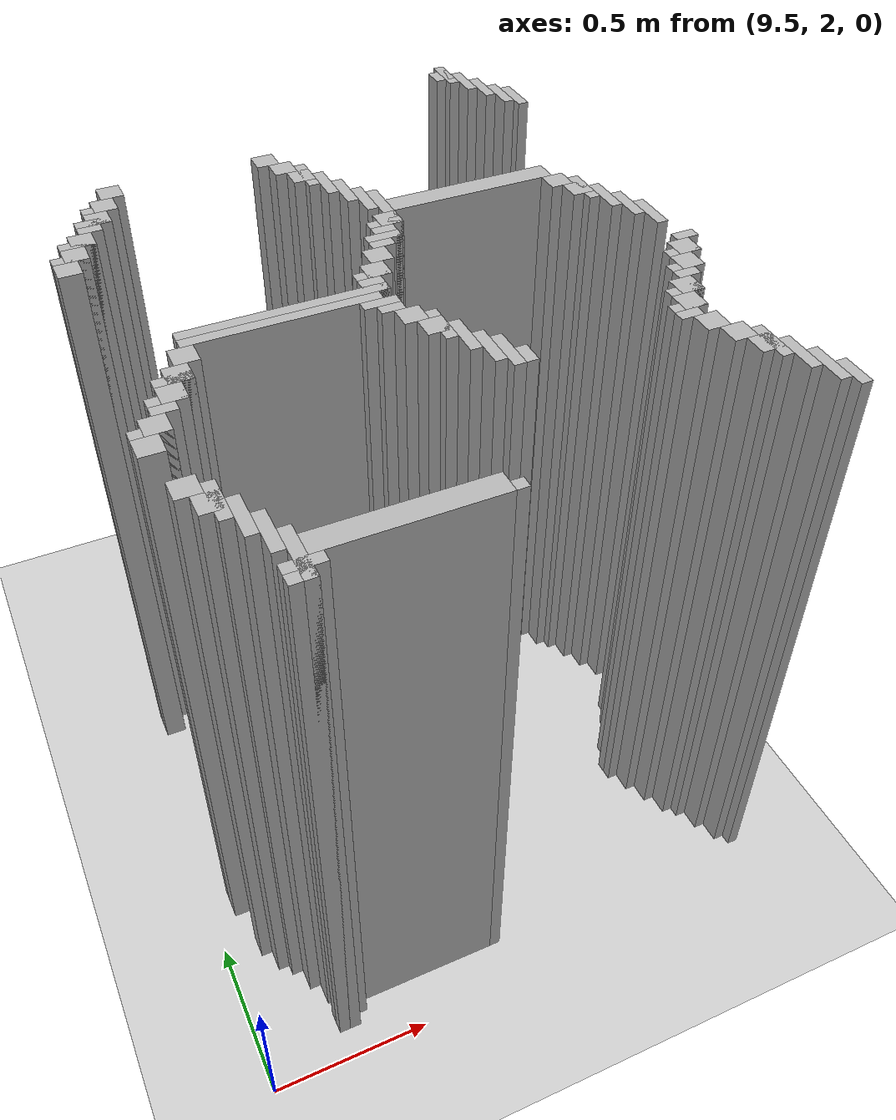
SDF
<sdf version="1.6">
 <world name="slam_world">
  <model name="ground_plane">
   <static>true</static>
   <link name="link">
    <collision name="collision">
     <geometry><plane><normal>0 0 1</normal><size>100 100</size></plane></geometry>
    </collision>
    <visual name="visual">
     <geometry><plane><normal>0 0 1</normal><size>100 100</size></plane></geometry>
     <material>
      <ambient>0.8 0.8 0.8 1</ambient>
      <diffuse>0.8 0.8 0.8 1</diffuse>
      <specular>0.8 0.8 0.8 1</specular>
     </material>
    </visual>
   </link>
  </model>
  <model name="wall_4307">
   <static>true</static>
   <pose>11.084686774941995 4.211136890951276 1.0 0 0 0</pose>
   <link name="link">
    <collision name="collision">
     <geometry><box><size>0.03480278422273782 0.13921113689095127 2.0</size></box></geometry>
    </collision>
    <visual name="visual">
     <geometry><box><size>0.03480278422273782 0.13921113689095127 2.0</size></box></geometry>
     <material><ambient>0.5 0.5 0.5 1</ambient><diffuse>0.7 0.7 0.7 1</diffuse></material>
    </visual>
   </link>
  </model>
  <model name="wall_4322">
   <static>true</static>
   <pose>11.067285382830626 4.211136890951276 1.0 0 0 0</pose>
   <link name="link">
    <collision name="collision">
     <geometry><box><size>0.06960556844547564 0.06960556844547564 2.0</size></box></geometry>
    </collision>
    <visual name="visual">
     <geometry><box><size>0.06960556844547564 0.06960556844547564 2.0</size></box></geometry>
     <material><ambient>0.5 0.5 0.5 1</ambient><diffuse>0.7 0.7 0.7 1</diffuse></material>
    </visual>
   </link>
  </model>
  <model name="wall_4337">
   <static>true</static>
   <pose>11.119489559164732 4.1415313225058 1.0 0 0 0</pose>
   <link name="link">
    <collision name="collision">
     <geometry><box><size>0.03480278422273782 0.13921113689095127 2.0</size></box></geometry>
    </collision>
    <visual name="visual">
     <geometry><box><size>0.03480278422273782 0.13921113689095127 2.0</size></box></geometry>
     <material><ambient>0.5 0.5 0.5 1</ambient><diffuse>0.7 0.7 0.7 1</diffuse></material>
    </visual>
   </link>
  </model>
  <model name="wall_4361">
   <static>true</static>
   <pose>11.154292343387471 4.071925754060325 1.0 0 0 0</pose>
   <link name="link">
    <collision name="collision">
     <geometry><box><size>0.03480278422273782 0.13921113689095127 2.0</size></box></geometry>
    </collision>
    <visual name="visual">
     <geometry><box><size>0.03480278422273782 0.13921113689095127 2.0</size></box></geometry>
     <material><ambient>0.5 0.5 0.5 1</ambient><diffuse>0.7 0.7 0.7 1</diffuse></material>
    </visual>
   </link>
  </model>
  <model name="wall_4376">
   <static>true</static>
   <pose>11.189095127610209 4.002320185614849 1.0 0 0 0</pose>
   <link name="link">
    <collision name="collision">
     <geometry><box><size>0.03480278422273782 0.13921113689095127 2.0</size></box></geometry>
    </collision>
    <visual name="visual">
     <geometry><box><size>0.03480278422273782 0.13921113689095127 2.0</size></box></geometry>
     <material><ambient>0.5 0.5 0.5 1</ambient><diffuse>0.7 0.7 0.7 1</diffuse></material>
    </visual>
   </link>
  </model>
  <model name="wall_4391">
   <static>true</static>
   <pose>11.223897911832946 3.967517401392111 1.0 0 0 0</pose>
   <link name="link">
    <collision name="collision">
     <geometry><box><size>0.03480278422273782 0.13921113689095127 2.0</size></box></geometry>
    </collision>
    <visual name="visual">
     <geometry><box><size>0.03480278422273782 0.13921113689095127 2.0</size></box></geometry>
     <material><ambient>0.5 0.5 0.5 1</ambient><diffuse>0.7 0.7 0.7 1</diffuse></material>
    </visual>
   </link>
  </model>
  <model name="wall_4437">
   <static>true</static>
   <pose>9.814385150812065 3.863109048723898 1.0 0 0 0</pose>
   <link name="link">
    <collision name="collision">
     <geometry><box><size>0.06960556844547564 0.06960556844547564 2.0</size></box></geometry>
    </collision>
    <visual name="visual">
     <geometry><box><size>0.06960556844547564 0.06960556844547564 2.0</size></box></geometry>
     <material><ambient>0.5 0.5 0.5 1</ambient><diffuse>0.7 0.7 0.7 1</diffuse></material>
    </visual>
   </link>
  </model>
  <model name="wall_4438">
   <static>true</static>
   <pose>10.301624129930394 3.863109048723898 1.0 0 0 0</pose>
   <link name="link">
    <collision name="collision">
     <geometry><box><size>0.06960556844547564 0.06960556844547564 2.0</size></box></geometry>
    </collision>
    <visual name="visual">
     <geometry><box><size>0.06960556844547564 0.06960556844547564 2.0</size></box></geometry>
     <material><ambient>0.5 0.5 0.5 1</ambient><diffuse>0.7 0.7 0.7 1</diffuse></material>
    </visual>
   </link>
  </model>
  <model name="wall_4454">
   <static>true</static>
   <pose>9.779582366589327 3.793503480278422 1.0 0 0 0</pose>
   <link name="link">
    <collision name="collision">
     <geometry><box><size>0.06960556844547564 0.06960556844547564 2.0</size></box></geometry>
    </collision>
    <visual name="visual">
     <geometry><box><size>0.06960556844547564 0.06960556844547564 2.0</size></box></geometry>
     <material><ambient>0.5 0.5 0.5 1</ambient><diffuse>0.7 0.7 0.7 1</diffuse></material>
    </visual>
   </link>
  </model>
  <model name="wall_4455">
   <static>true</static>
   <pose>10.336426914153131 3.793503480278422 1.0 0 0 0</pose>
   <link name="link">
    <collision name="collision">
     <geometry><box><size>0.06960556844547564 0.06960556844547564 2.0</size></box></geometry>
    </collision>
    <visual name="visual">
     <geometry><box><size>0.06960556844547564 0.06960556844547564 2.0</size></box></geometry>
     <material><ambient>0.5 0.5 0.5 1</ambient><diffuse>0.7 0.7 0.7 1</diffuse></material>
    </visual>
   </link>
  </model>
  <model name="wall_4471">
   <static>true</static>
   <pose>9.762180974477959 3.776102088167053 1.0 0 0 0</pose>
   <link name="link">
    <collision name="collision">
     <geometry><box><size>0.10440835266821345 0.03480278422273782 2.0</size></box></geometry>
    </collision>
    <visual name="visual">
     <geometry><box><size>0.10440835266821345 0.03480278422273782 2.0</size></box></geometry>
     <material><ambient>0.5 0.5 0.5 1</ambient><diffuse>0.7 0.7 0.7 1</diffuse></material>
    </visual>
   </link>
  </model>
  <model name="wall_4472">
   <static>true</static>
   <pose>10.38863109048724 3.7238979118329465 1.0 0 0 0</pose>
   <link name="link">
    <collision name="collision">
     <geometry><box><size>0.03480278422273782 0.13921113689095127 2.0</size></box></geometry>
    </collision>
    <visual name="visual">
     <geometry><box><size>0.03480278422273782 0.13921113689095127 2.0</size></box></geometry>
     <material><ambient>0.5 0.5 0.5 1</ambient><diffuse>0.7 0.7 0.7 1</diffuse></material>
    </visual>
   </link>
  </model>
  <model name="wall_4488">
   <static>true</static>
   <pose>9.744779582366588 3.7238979118329465 1.0 0 0 0</pose>
   <link name="link">
    <collision name="collision">
     <geometry><box><size>0.06960556844547564 0.06960556844547564 2.0</size></box></geometry>
    </collision>
    <visual name="visual">
     <geometry><box><size>0.06960556844547564 0.06960556844547564 2.0</size></box></geometry>
     <material><ambient>0.5 0.5 0.5 1</ambient><diffuse>0.7 0.7 0.7 1</diffuse></material>
    </visual>
   </link>
  </model>
  <model name="wall_4489">
   <static>true</static>
   <pose>10.37122969837587 3.7238979118329465 1.0 0 0 0</pose>
   <link name="link">
    <collision name="collision">
     <geometry><box><size>0.06960556844547564 0.06960556844547564 2.0</size></box></geometry>
    </collision>
    <visual name="visual">
     <geometry><box><size>0.06960556844547564 0.06960556844547564 2.0</size></box></geometry>
     <material><ambient>0.5 0.5 0.5 1</ambient><diffuse>0.7 0.7 0.7 1</diffuse></material>
    </visual>
   </link>
  </model>
  <model name="wall_4505">
   <static>true</static>
   <pose>9.72737819025522 3.706496519721578 1.0 0 0 0</pose>
   <link name="link">
    <collision name="collision">
     <geometry><box><size>0.10440835266821345 0.03480278422273782 2.0</size></box></geometry>
    </collision>
    <visual name="visual">
     <geometry><box><size>0.10440835266821345 0.03480278422273782 2.0</size></box></geometry>
     <material><ambient>0.5 0.5 0.5 1</ambient><diffuse>0.7 0.7 0.7 1</diffuse></material>
    </visual>
   </link>
  </model>
  <model name="wall_4506">
   <static>true</static>
   <pose>10.423433874709977 3.6542923433874708 1.0 0 0 0</pose>
   <link name="link">
    <collision name="collision">
     <geometry><box><size>0.03480278422273782 0.13921113689095127 2.0</size></box></geometry>
    </collision>
    <visual name="visual">
     <geometry><box><size>0.03480278422273782 0.13921113689095127 2.0</size></box></geometry>
     <material><ambient>0.5 0.5 0.5 1</ambient><diffuse>0.7 0.7 0.7 1</diffuse></material>
    </visual>
   </link>
  </model>
  <model name="wall_4516">
   <static>true</static>
   <pose>9.70997679814385 3.67169373549884 1.0 0 0 0</pose>
   <link name="link">
    <collision name="collision">
     <geometry><box><size>0.06960556844547564 0.03480278422273782 2.0</size></box></geometry>
    </collision>
    <visual name="visual">
     <geometry><box><size>0.06960556844547564 0.03480278422273782 2.0</size></box></geometry>
     <material><ambient>0.5 0.5 0.5 1</ambient><diffuse>0.7 0.7 0.7 1</diffuse></material>
    </visual>
   </link>
  </model>
  <model name="wall_4529">
   <static>true</static>
   <pose>9.675174013921113 3.619489559164733 1.0 0 0 0</pose>
   <link name="link">
    <collision name="collision">
     <geometry><box><size>0.06960556844547564 0.06960556844547564 2.0</size></box></geometry>
    </collision>
    <visual name="visual">
     <geometry><box><size>0.06960556844547564 0.06960556844547564 2.0</size></box></geometry>
     <material><ambient>0.5 0.5 0.5 1</ambient><diffuse>0.7 0.7 0.7 1</diffuse></material>
    </visual>
   </link>
  </model>
  <model name="wall_4530">
   <static>true</static>
   <pose>10.458236658932714 3.584686774941995 1.0 0 0 0</pose>
   <link name="link">
    <collision name="collision">
     <geometry><box><size>0.03480278422273782 0.13921113689095127 2.0</size></box></geometry>
    </collision>
    <visual name="visual">
     <geometry><box><size>0.03480278422273782 0.13921113689095127 2.0</size></box></geometry>
     <material><ambient>0.5 0.5 0.5 1</ambient><diffuse>0.7 0.7 0.7 1</diffuse></material>
    </visual>
   </link>
  </model>
  <model name="wall_4540">
   <static>true</static>
   <pose>9.657772621809745 3.602088167053364 1.0 0 0 0</pose>
   <link name="link">
    <collision name="collision">
     <geometry><box><size>0.10440835266821345 0.03480278422273782 2.0</size></box></geometry>
    </collision>
    <visual name="visual">
     <geometry><box><size>0.10440835266821345 0.03480278422273782 2.0</size></box></geometry>
     <material><ambient>0.5 0.5 0.5 1</ambient><diffuse>0.7 0.7 0.7 1</diffuse></material>
    </visual>
   </link>
  </model>
  <model name="wall_4553">
   <static>true</static>
   <pose>9.640371229698376 3.549883990719257 1.0 0 0 0</pose>
   <link name="link">
    <collision name="collision">
     <geometry><box><size>0.06960556844547564 0.06960556844547564 2.0</size></box></geometry>
    </collision>
    <visual name="visual">
     <geometry><box><size>0.06960556844547564 0.06960556844547564 2.0</size></box></geometry>
     <material><ambient>0.5 0.5 0.5 1</ambient><diffuse>0.7 0.7 0.7 1</diffuse></material>
    </visual>
   </link>
  </model>
  <model name="wall_4554">
   <static>true</static>
   <pose>10.493039443155451 3.51508120649652 1.0 0 0 0</pose>
   <link name="link">
    <collision name="collision">
     <geometry><box><size>0.03480278422273782 0.13921113689095127 2.0</size></box></geometry>
    </collision>
    <visual name="visual">
     <geometry><box><size>0.03480278422273782 0.13921113689095127 2.0</size></box></geometry>
     <material><ambient>0.5 0.5 0.5 1</ambient><diffuse>0.7 0.7 0.7 1</diffuse></material>
    </visual>
   </link>
  </model>
  <model name="wall_4570">
   <static>true</static>
   <pose>9.622969837587007 3.5324825986078885 1.0 0 0 0</pose>
   <link name="link">
    <collision name="collision">
     <geometry><box><size>0.10440835266821345 0.03480278422273782 2.0</size></box></geometry>
    </collision>
    <visual name="visual">
     <geometry><box><size>0.10440835266821345 0.03480278422273782 2.0</size></box></geometry>
     <material><ambient>0.5 0.5 0.5 1</ambient><diffuse>0.7 0.7 0.7 1</diffuse></material>
    </visual>
   </link>
  </model>
  <model name="wall_4571">
   <static>true</static>
   <pose>10.52784222737819 3.445475638051044 1.0 0 0 0</pose>
   <link name="link">
    <collision name="collision">
     <geometry><box><size>0.03480278422273782 0.2088167053364269 2.0</size></box></geometry>
    </collision>
    <visual name="visual">
     <geometry><box><size>0.03480278422273782 0.2088167053364269 2.0</size></box></geometry>
     <material><ambient>0.5 0.5 0.5 1</ambient><diffuse>0.7 0.7 0.7 1</diffuse></material>
    </visual>
   </link>
  </model>
  <model name="wall_4581">
   <static>true</static>
   <pose>9.605568445475638 3.480278422273782 1.0 0 0 0</pose>
   <link name="link">
    <collision name="collision">
     <geometry><box><size>0.06960556844547564 0.06960556844547564 2.0</size></box></geometry>
    </collision>
    <visual name="visual">
     <geometry><box><size>0.06960556844547564 0.06960556844547564 2.0</size></box></geometry>
     <material><ambient>0.5 0.5 0.5 1</ambient><diffuse>0.7 0.7 0.7 1</diffuse></material>
    </visual>
   </link>
  </model>
  <model name="wall_4594">
   <static>true</static>
   <pose>10.806264501160092 3.445475638051044 1.0 0 0 0</pose>
   <link name="link">
    <collision name="collision">
     <geometry><box><size>0.5220417633410672 0.06960556844547564 2.0</size></box></geometry>
    </collision>
    <visual name="visual">
     <geometry><box><size>0.5220417633410672 0.06960556844547564 2.0</size></box></geometry>
     <material><ambient>0.5 0.5 0.5 1</ambient><diffuse>0.7 0.7 0.7 1</diffuse></material>
    </visual>
   </link>
  </model>
  <model name="wall_4613">
   <static>true</static>
   <pose>10.51044083526682 3.3758700696055683 1.0 0 0 0</pose>
   <link name="link">
    <collision name="collision">
     <geometry><box><size>0.06960556844547564 0.06960556844547564 2.0</size></box></geometry>
    </collision>
    <visual name="visual">
     <geometry><box><size>0.06960556844547564 0.06960556844547564 2.0</size></box></geometry>
     <material><ambient>0.5 0.5 0.5 1</ambient><diffuse>0.7 0.7 0.7 1</diffuse></material>
    </visual>
   </link>
  </model>
  <model name="wall_4614">
   <static>true</static>
   <pose>11.067285382830626 3.3758700696055683 1.0 0 0 0</pose>
   <link name="link">
    <collision name="collision">
     <geometry><box><size>0.06960556844547564 0.06960556844547564 2.0</size></box></geometry>
    </collision>
    <visual name="visual">
     <geometry><box><size>0.06960556844547564 0.06960556844547564 2.0</size></box></geometry>
     <material><ambient>0.5 0.5 0.5 1</ambient><diffuse>0.7 0.7 0.7 1</diffuse></material>
    </visual>
   </link>
  </model>
  <model name="wall_4626">
   <static>true</static>
   <pose>10.493039443155451 3.358468677494199 1.0 0 0 0</pose>
   <link name="link">
    <collision name="collision">
     <geometry><box><size>0.10440835266821345 0.03480278422273782 2.0</size></box></geometry>
    </collision>
    <visual name="visual">
     <geometry><box><size>0.10440835266821345 0.03480278422273782 2.0</size></box></geometry>
     <material><ambient>0.5 0.5 0.5 1</ambient><diffuse>0.7 0.7 0.7 1</diffuse></material>
    </visual>
   </link>
  </model>
  <model name="wall_4627">
   <static>true</static>
   <pose>11.119489559164732 3.3062645011600926 1.0 0 0 0</pose>
   <link name="link">
    <collision name="collision">
     <geometry><box><size>0.03480278422273782 0.13921113689095127 2.0</size></box></geometry>
    </collision>
    <visual name="visual">
     <geometry><box><size>0.03480278422273782 0.13921113689095127 2.0</size></box></geometry>
     <material><ambient>0.5 0.5 0.5 1</ambient><diffuse>0.7 0.7 0.7 1</diffuse></material>
    </visual>
   </link>
  </model>
  <model name="wall_4639">
   <static>true</static>
   <pose>10.475638051044083 3.3062645011600926 1.0 0 0 0</pose>
   <link name="link">
    <collision name="collision">
     <geometry><box><size>0.06960556844547564 0.06960556844547564 2.0</size></box></geometry>
    </collision>
    <visual name="visual">
     <geometry><box><size>0.06960556844547564 0.06960556844547564 2.0</size></box></geometry>
     <material><ambient>0.5 0.5 0.5 1</ambient><diffuse>0.7 0.7 0.7 1</diffuse></material>
    </visual>
   </link>
  </model>
  <model name="wall_4640">
   <static>true</static>
   <pose>11.102088167053363 3.3062645011600926 1.0 0 0 0</pose>
   <link name="link">
    <collision name="collision">
     <geometry><box><size>0.06960556844547564 0.06960556844547564 2.0</size></box></geometry>
    </collision>
    <visual name="visual">
     <geometry><box><size>0.06960556844547564 0.06960556844547564 2.0</size></box></geometry>
     <material><ambient>0.5 0.5 0.5 1</ambient><diffuse>0.7 0.7 0.7 1</diffuse></material>
    </visual>
   </link>
  </model>
  <model name="wall_4652">
   <static>true</static>
   <pose>10.458236658932714 3.288863109048724 1.0 0 0 0</pose>
   <link name="link">
    <collision name="collision">
     <geometry><box><size>0.10440835266821345 0.03480278422273782 2.0</size></box></geometry>
    </collision>
    <visual name="visual">
     <geometry><box><size>0.10440835266821345 0.03480278422273782 2.0</size></box></geometry>
     <material><ambient>0.5 0.5 0.5 1</ambient><diffuse>0.7 0.7 0.7 1</diffuse></material>
    </visual>
   </link>
  </model>
  <model name="wall_4653">
   <static>true</static>
   <pose>11.154292343387471 3.236658932714617 1.0 0 0 0</pose>
   <link name="link">
    <collision name="collision">
     <geometry><box><size>0.03480278422273782 0.13921113689095127 2.0</size></box></geometry>
    </collision>
    <visual name="visual">
     <geometry><box><size>0.03480278422273782 0.13921113689095127 2.0</size></box></geometry>
     <material><ambient>0.5 0.5 0.5 1</ambient><diffuse>0.7 0.7 0.7 1</diffuse></material>
    </visual>
   </link>
  </model>
  <model name="wall_4661">
   <static>true</static>
   <pose>10.440835266821345 3.254060324825986 1.0 0 0 0</pose>
   <link name="link">
    <collision name="collision">
     <geometry><box><size>0.06960556844547564 0.03480278422273782 2.0</size></box></geometry>
    </collision>
    <visual name="visual">
     <geometry><box><size>0.06960556844547564 0.03480278422273782 2.0</size></box></geometry>
     <material><ambient>0.5 0.5 0.5 1</ambient><diffuse>0.7 0.7 0.7 1</diffuse></material>
    </visual>
   </link>
  </model>
  <model name="wall_4671">
   <static>true</static>
   <pose>10.406032482598608 3.201856148491879 1.0 0 0 0</pose>
   <link name="link">
    <collision name="collision">
     <geometry><box><size>0.06960556844547564 0.06960556844547564 2.0</size></box></geometry>
    </collision>
    <visual name="visual">
     <geometry><box><size>0.06960556844547564 0.06960556844547564 2.0</size></box></geometry>
     <material><ambient>0.5 0.5 0.5 1</ambient><diffuse>0.7 0.7 0.7 1</diffuse></material>
    </visual>
   </link>
  </model>
  <model name="wall_4672">
   <static>true</static>
   <pose>11.189095127610209 3.167053364269141 1.0 0 0 0</pose>
   <link name="link">
    <collision name="collision">
     <geometry><box><size>0.03480278422273782 0.13921113689095127 2.0</size></box></geometry>
    </collision>
    <visual name="visual">
     <geometry><box><size>0.03480278422273782 0.13921113689095127 2.0</size></box></geometry>
     <material><ambient>0.5 0.5 0.5 1</ambient><diffuse>0.7 0.7 0.7 1</diffuse></material>
    </visual>
   </link>
  </model>
  <model name="wall_4684">
   <static>true</static>
   <pose>10.37122969837587 3.1322505800464038 1.0 0 0 0</pose>
   <link name="link">
    <collision name="collision">
     <geometry><box><size>0.06960556844547564 0.06960556844547564 2.0</size></box></geometry>
    </collision>
    <visual name="visual">
     <geometry><box><size>0.06960556844547564 0.06960556844547564 2.0</size></box></geometry>
     <material><ambient>0.5 0.5 0.5 1</ambient><diffuse>0.7 0.7 0.7 1</diffuse></material>
    </visual>
   </link>
  </model>
  <model name="wall_4685">
   <static>true</static>
   <pose>11.223897911832946 3.097447795823666 1.0 0 0 0</pose>
   <link name="link">
    <collision name="collision">
     <geometry><box><size>0.03480278422273782 0.13921113689095127 2.0</size></box></geometry>
    </collision>
    <visual name="visual">
     <geometry><box><size>0.03480278422273782 0.13921113689095127 2.0</size></box></geometry>
     <material><ambient>0.5 0.5 0.5 1</ambient><diffuse>0.7 0.7 0.7 1</diffuse></material>
    </visual>
   </link>
  </model>
  <model name="wall_4697">
   <static>true</static>
   <pose>10.3538283062645 3.1148491879350346 1.0 0 0 0</pose>
   <link name="link">
    <collision name="collision">
     <geometry><box><size>0.10440835266821345 0.03480278422273782 2.0</size></box></geometry>
    </collision>
    <visual name="visual">
     <geometry><box><size>0.10440835266821345 0.03480278422273782 2.0</size></box></geometry>
     <material><ambient>0.5 0.5 0.5 1</ambient><diffuse>0.7 0.7 0.7 1</diffuse></material>
    </visual>
   </link>
  </model>
  <model name="wall_4706">
   <static>true</static>
   <pose>10.336426914153131 3.062645011600928 1.0 0 0 0</pose>
   <link name="link">
    <collision name="collision">
     <geometry><box><size>0.06960556844547564 0.06960556844547564 2.0</size></box></geometry>
    </collision>
    <visual name="visual">
     <geometry><box><size>0.06960556844547564 0.06960556844547564 2.0</size></box></geometry>
     <material><ambient>0.5 0.5 0.5 1</ambient><diffuse>0.7 0.7 0.7 1</diffuse></material>
    </visual>
   </link>
  </model>
  <model name="wall_4720">
   <static>true</static>
   <pose>10.075406032482599 3.045243619489559 1.0 0 0 0</pose>
   <link name="link">
    <collision name="collision">
     <geometry><box><size>0.5916473317865429 0.03480278422273782 2.0</size></box></geometry>
    </collision>
    <visual name="visual">
     <geometry><box><size>0.5916473317865429 0.03480278422273782 2.0</size></box></geometry>
     <material><ambient>0.5 0.5 0.5 1</ambient><diffuse>0.7 0.7 0.7 1</diffuse></material>
    </visual>
   </link>
  </model>
  <model name="wall_4728">
   <static>true</static>
   <pose>10.058004640371228 3.010440835266821 1.0 0 0 0</pose>
   <link name="link">
    <collision name="collision">
     <geometry><box><size>0.5568445475638051 0.03480278422273782 2.0</size></box></geometry>
    </collision>
    <visual name="visual">
     <geometry><box><size>0.5568445475638051 0.03480278422273782 2.0</size></box></geometry>
     <material><ambient>0.5 0.5 0.5 1</ambient><diffuse>0.7 0.7 0.7 1</diffuse></material>
    </visual>
   </link>
  </model>
  <model name="wall_4741">
   <static>true</static>
   <pose>9.779582366589327 2.9582366589327145 1.0 0 0 0</pose>
   <link name="link">
    <collision name="collision">
     <geometry><box><size>0.06960556844547564 0.06960556844547564 2.0</size></box></geometry>
    </collision>
    <visual name="visual">
     <geometry><box><size>0.06960556844547564 0.06960556844547564 2.0</size></box></geometry>
     <material><ambient>0.5 0.5 0.5 1</ambient><diffuse>0.7 0.7 0.7 1</diffuse></material>
    </visual>
   </link>
  </model>
  <model name="wall_4742">
   <static>true</static>
   <pose>10.319025522041763 2.975638051044083 1.0 0 0 0</pose>
   <link name="link">
    <collision name="collision">
     <geometry><box><size>0.10440835266821345 0.03480278422273782 2.0</size></box></geometry>
    </collision>
    <visual name="visual">
     <geometry><box><size>0.10440835266821345 0.03480278422273782 2.0</size></box></geometry>
     <material><ambient>0.5 0.5 0.5 1</ambient><diffuse>0.7 0.7 0.7 1</diffuse></material>
    </visual>
   </link>
  </model>
  <model name="wall_4747">
   <static>true</static>
   <pose>10.336426914153131 2.9408352668213458 1.0 0 0 0</pose>
   <link name="link">
    <collision name="collision">
     <geometry><box><size>0.06960556844547564 0.03480278422273782 2.0</size></box></geometry>
    </collision>
    <visual name="visual">
     <geometry><box><size>0.06960556844547564 0.03480278422273782 2.0</size></box></geometry>
     <material><ambient>0.5 0.5 0.5 1</ambient><diffuse>0.7 0.7 0.7 1</diffuse></material>
    </visual>
   </link>
  </model>
  <model name="wall_4748">
   <static>true</static>
   <pose>11.241299303944315 2.9408352668213458 1.0 0 0 0</pose>
   <link name="link">
    <collision name="collision">
     <geometry><box><size>0.06960556844547564 0.03480278422273782 2.0</size></box></geometry>
    </collision>
    <visual name="visual">
     <geometry><box><size>0.06960556844547564 0.03480278422273782 2.0</size></box></geometry>
     <material><ambient>0.5 0.5 0.5 1</ambient><diffuse>0.7 0.7 0.7 1</diffuse></material>
    </visual>
   </link>
  </model>
  <model name="wall_4760">
   <static>true</static>
   <pose>9.744779582366588 2.8886310904872388 1.0 0 0 0</pose>
   <link name="link">
    <collision name="collision">
     <geometry><box><size>0.06960556844547564 0.06960556844547564 2.0</size></box></geometry>
    </collision>
    <visual name="visual">
     <geometry><box><size>0.06960556844547564 0.06960556844547564 2.0</size></box></geometry>
     <material><ambient>0.5 0.5 0.5 1</ambient><diffuse>0.7 0.7 0.7 1</diffuse></material>
    </visual>
   </link>
  </model>
  <model name="wall_4761">
   <static>true</static>
   <pose>10.37122969837587 2.8886310904872388 1.0 0 0 0</pose>
   <link name="link">
    <collision name="collision">
     <geometry><box><size>0.06960556844547564 0.06960556844547564 2.0</size></box></geometry>
    </collision>
    <visual name="visual">
     <geometry><box><size>0.06960556844547564 0.06960556844547564 2.0</size></box></geometry>
     <material><ambient>0.5 0.5 0.5 1</ambient><diffuse>0.7 0.7 0.7 1</diffuse></material>
    </visual>
   </link>
  </model>
  <model name="wall_4762">
   <static>true</static>
   <pose>11.206496519721577 2.8886310904872388 1.0 0 0 0</pose>
   <link name="link">
    <collision name="collision">
     <geometry><box><size>0.06960556844547564 0.06960556844547564 2.0</size></box></geometry>
    </collision>
    <visual name="visual">
     <geometry><box><size>0.06960556844547564 0.06960556844547564 2.0</size></box></geometry>
     <material><ambient>0.5 0.5 0.5 1</ambient><diffuse>0.7 0.7 0.7 1</diffuse></material>
    </visual>
   </link>
  </model>
  <model name="wall_4776">
   <static>true</static>
   <pose>9.72737819025522 2.87122969837587 1.0 0 0 0</pose>
   <link name="link">
    <collision name="collision">
     <geometry><box><size>0.10440835266821345 0.03480278422273782 2.0</size></box></geometry>
    </collision>
    <visual name="visual">
     <geometry><box><size>0.10440835266821345 0.03480278422273782 2.0</size></box></geometry>
     <material><ambient>0.5 0.5 0.5 1</ambient><diffuse>0.7 0.7 0.7 1</diffuse></material>
    </visual>
   </link>
  </model>
  <model name="wall_4777">
   <static>true</static>
   <pose>10.423433874709977 2.819025522041763 1.0 0 0 0</pose>
   <link name="link">
    <collision name="collision">
     <geometry><box><size>0.03480278422273782 0.13921113689095127 2.0</size></box></geometry>
    </collision>
    <visual name="visual">
     <geometry><box><size>0.03480278422273782 0.13921113689095127 2.0</size></box></geometry>
     <material><ambient>0.5 0.5 0.5 1</ambient><diffuse>0.7 0.7 0.7 1</diffuse></material>
    </visual>
   </link>
  </model>
  <model name="wall_4778">
   <static>true</static>
   <pose>11.189095127610209 2.87122969837587 1.0 0 0 0</pose>
   <link name="link">
    <collision name="collision">
     <geometry><box><size>0.10440835266821345 0.03480278422273782 2.0</size></box></geometry>
    </collision>
    <visual name="visual">
     <geometry><box><size>0.10440835266821345 0.03480278422273782 2.0</size></box></geometry>
     <material><ambient>0.5 0.5 0.5 1</ambient><diffuse>0.7 0.7 0.7 1</diffuse></material>
    </visual>
   </link>
  </model>
  <model name="wall_4792">
   <static>true</static>
   <pose>9.70997679814385 2.819025522041763 1.0 0 0 0</pose>
   <link name="link">
    <collision name="collision">
     <geometry><box><size>0.06960556844547564 0.06960556844547564 2.0</size></box></geometry>
    </collision>
    <visual name="visual">
     <geometry><box><size>0.06960556844547564 0.06960556844547564 2.0</size></box></geometry>
     <material><ambient>0.5 0.5 0.5 1</ambient><diffuse>0.7 0.7 0.7 1</diffuse></material>
    </visual>
   </link>
  </model>
  <model name="wall_4793">
   <static>true</static>
   <pose>10.406032482598608 2.819025522041763 1.0 0 0 0</pose>
   <link name="link">
    <collision name="collision">
     <geometry><box><size>0.06960556844547564 0.06960556844547564 2.0</size></box></geometry>
    </collision>
    <visual name="visual">
     <geometry><box><size>0.06960556844547564 0.06960556844547564 2.0</size></box></geometry>
     <material><ambient>0.5 0.5 0.5 1</ambient><diffuse>0.7 0.7 0.7 1</diffuse></material>
    </visual>
   </link>
  </model>
  <model name="wall_4794">
   <static>true</static>
   <pose>11.17169373549884 2.819025522041763 1.0 0 0 0</pose>
   <link name="link">
    <collision name="collision">
     <geometry><box><size>0.06960556844547564 0.06960556844547564 2.0</size></box></geometry>
    </collision>
    <visual name="visual">
     <geometry><box><size>0.06960556844547564 0.06960556844547564 2.0</size></box></geometry>
     <material><ambient>0.5 0.5 0.5 1</ambient><diffuse>0.7 0.7 0.7 1</diffuse></material>
    </visual>
   </link>
  </model>
  <model name="wall_4808">
   <static>true</static>
   <pose>9.692575406032482 2.8016241299303943 1.0 0 0 0</pose>
   <link name="link">
    <collision name="collision">
     <geometry><box><size>0.10440835266821345 0.03480278422273782 2.0</size></box></geometry>
    </collision>
    <visual name="visual">
     <geometry><box><size>0.10440835266821345 0.03480278422273782 2.0</size></box></geometry>
     <material><ambient>0.5 0.5 0.5 1</ambient><diffuse>0.7 0.7 0.7 1</diffuse></material>
    </visual>
   </link>
  </model>
  <model name="wall_4809">
   <static>true</static>
   <pose>10.458236658932714 2.7494199535962878 1.0 0 0 0</pose>
   <link name="link">
    <collision name="collision">
     <geometry><box><size>0.03480278422273782 0.13921113689095127 2.0</size></box></geometry>
    </collision>
    <visual name="visual">
     <geometry><box><size>0.03480278422273782 0.13921113689095127 2.0</size></box></geometry>
     <material><ambient>0.5 0.5 0.5 1</ambient><diffuse>0.7 0.7 0.7 1</diffuse></material>
    </visual>
   </link>
  </model>
  <model name="wall_4810">
   <static>true</static>
   <pose>11.154292343387471 2.8016241299303943 1.0 0 0 0</pose>
   <link name="link">
    <collision name="collision">
     <geometry><box><size>0.10440835266821345 0.03480278422273782 2.0</size></box></geometry>
    </collision>
    <visual name="visual">
     <geometry><box><size>0.10440835266821345 0.03480278422273782 2.0</size></box></geometry>
     <material><ambient>0.5 0.5 0.5 1</ambient><diffuse>0.7 0.7 0.7 1</diffuse></material>
    </visual>
   </link>
  </model>
  <model name="wall_4818">
   <static>true</static>
   <pose>9.675174013921113 2.7668213457076565 1.0 0 0 0</pose>
   <link name="link">
    <collision name="collision">
     <geometry><box><size>0.06960556844547564 0.03480278422273782 2.0</size></box></geometry>
    </collision>
    <visual name="visual">
     <geometry><box><size>0.06960556844547564 0.03480278422273782 2.0</size></box></geometry>
     <material><ambient>0.5 0.5 0.5 1</ambient><diffuse>0.7 0.7 0.7 1</diffuse></material>
    </visual>
   </link>
  </model>
  <model name="wall_4819">
   <static>true</static>
   <pose>11.1368909512761 2.7668213457076565 1.0 0 0 0</pose>
   <link name="link">
    <collision name="collision">
     <geometry><box><size>0.06960556844547564 0.03480278422273782 2.0</size></box></geometry>
    </collision>
    <visual name="visual">
     <geometry><box><size>0.06960556844547564 0.03480278422273782 2.0</size></box></geometry>
     <material><ambient>0.5 0.5 0.5 1</ambient><diffuse>0.7 0.7 0.7 1</diffuse></material>
    </visual>
   </link>
  </model>
  <model name="wall_4832">
   <static>true</static>
   <pose>9.640371229698376 2.71461716937355 1.0 0 0 0</pose>
   <link name="link">
    <collision name="collision">
     <geometry><box><size>0.06960556844547564 0.06960556844547564 2.0</size></box></geometry>
    </collision>
    <visual name="visual">
     <geometry><box><size>0.06960556844547564 0.06960556844547564 2.0</size></box></geometry>
     <material><ambient>0.5 0.5 0.5 1</ambient><diffuse>0.7 0.7 0.7 1</diffuse></material>
    </visual>
   </link>
  </model>
  <model name="wall_4833">
   <static>true</static>
   <pose>10.493039443155451 2.679814385150812 1.0 0 0 0</pose>
   <link name="link">
    <collision name="collision">
     <geometry><box><size>0.03480278422273782 0.13921113689095127 2.0</size></box></geometry>
    </collision>
    <visual name="visual">
     <geometry><box><size>0.03480278422273782 0.13921113689095127 2.0</size></box></geometry>
     <material><ambient>0.5 0.5 0.5 1</ambient><diffuse>0.7 0.7 0.7 1</diffuse></material>
    </visual>
   </link>
  </model>
  <model name="wall_4834">
   <static>true</static>
   <pose>11.102088167053363 2.71461716937355 1.0 0 0 0</pose>
   <link name="link">
    <collision name="collision">
     <geometry><box><size>0.06960556844547564 0.06960556844547564 2.0</size></box></geometry>
    </collision>
    <visual name="visual">
     <geometry><box><size>0.06960556844547564 0.06960556844547564 2.0</size></box></geometry>
     <material><ambient>0.5 0.5 0.5 1</ambient><diffuse>0.7 0.7 0.7 1</diffuse></material>
    </visual>
   </link>
  </model>
  <model name="wall_4848">
   <static>true</static>
   <pose>9.622969837587007 2.6972157772621808 1.0 0 0 0</pose>
   <link name="link">
    <collision name="collision">
     <geometry><box><size>0.10440835266821345 0.03480278422273782 2.0</size></box></geometry>
    </collision>
    <visual name="visual">
     <geometry><box><size>0.10440835266821345 0.03480278422273782 2.0</size></box></geometry>
     <material><ambient>0.5 0.5 0.5 1</ambient><diffuse>0.7 0.7 0.7 1</diffuse></material>
    </visual>
   </link>
  </model>
  <model name="wall_4849">
   <static>true</static>
   <pose>10.52784222737819 2.645011600928074 1.0 0 0 0</pose>
   <link name="link">
    <collision name="collision">
     <geometry><box><size>0.03480278422273782 0.13921113689095127 2.0</size></box></geometry>
    </collision>
    <visual name="visual">
     <geometry><box><size>0.03480278422273782 0.13921113689095127 2.0</size></box></geometry>
     <material><ambient>0.5 0.5 0.5 1</ambient><diffuse>0.7 0.7 0.7 1</diffuse></material>
    </visual>
   </link>
  </model>
  <model name="wall_4850">
   <static>true</static>
   <pose>11.084686774941995 2.6972157772621808 1.0 0 0 0</pose>
   <link name="link">
    <collision name="collision">
     <geometry><box><size>0.10440835266821345 0.03480278422273782 2.0</size></box></geometry>
    </collision>
    <visual name="visual">
     <geometry><box><size>0.10440835266821345 0.03480278422273782 2.0</size></box></geometry>
     <material><ambient>0.5 0.5 0.5 1</ambient><diffuse>0.7 0.7 0.7 1</diffuse></material>
    </visual>
   </link>
  </model>
  <model name="wall_4858">
   <static>true</static>
   <pose>9.605568445475638 2.645011600928074 1.0 0 0 0</pose>
   <link name="link">
    <collision name="collision">
     <geometry><box><size>0.06960556844547564 0.06960556844547564 2.0</size></box></geometry>
    </collision>
    <visual name="visual">
     <geometry><box><size>0.06960556844547564 0.06960556844547564 2.0</size></box></geometry>
     <material><ambient>0.5 0.5 0.5 1</ambient><diffuse>0.7 0.7 0.7 1</diffuse></material>
    </visual>
   </link>
  </model>
  <model name="wall_4859">
   <static>true</static>
   <pose>11.067285382830626 2.645011600928074 1.0 0 0 0</pose>
   <link name="link">
    <collision name="collision">
     <geometry><box><size>0.06960556844547564 0.06960556844547564 2.0</size></box></geometry>
    </collision>
    <visual name="visual">
     <geometry><box><size>0.06960556844547564 0.06960556844547564 2.0</size></box></geometry>
     <material><ambient>0.5 0.5 0.5 1</ambient><diffuse>0.7 0.7 0.7 1</diffuse></material>
    </visual>
   </link>
  </model>
  <model name="wall_4872">
   <static>true</static>
   <pose>10.562645011600928 2.6102088167053363 1.0 0 0 0</pose>
   <link name="link">
    <collision name="collision">
     <geometry><box><size>0.03480278422273782 0.06960556844547564 2.0</size></box></geometry>
    </collision>
    <visual name="visual">
     <geometry><box><size>0.03480278422273782 0.06960556844547564 2.0</size></box></geometry>
     <material><ambient>0.5 0.5 0.5 1</ambient><diffuse>0.7 0.7 0.7 1</diffuse></material>
    </visual>
   </link>
  </model>
  <model name="wall_4873">
   <static>true</static>
   <pose>11.049883990719257 2.627610208816705 1.0 0 0 0</pose>
   <link name="link">
    <collision name="collision">
     <geometry><box><size>0.10440835266821345 0.03480278422273782 2.0</size></box></geometry>
    </collision>
    <visual name="visual">
     <geometry><box><size>0.10440835266821345 0.03480278422273782 2.0</size></box></geometry>
     <material><ambient>0.5 0.5 0.5 1</ambient><diffuse>0.7 0.7 0.7 1</diffuse></material>
    </visual>
   </link>
  </model>
  <model name="wall_4884">
   <static>true</static>
   <pose>11.032482598607888 2.5928074245939676 1.0 0 0 0</pose>
   <link name="link">
    <collision name="collision">
     <geometry><box><size>0.06960556844547564 0.03480278422273782 2.0</size></box></geometry>
    </collision>
    <visual name="visual">
     <geometry><box><size>0.06960556844547564 0.03480278422273782 2.0</size></box></geometry>
     <material><ambient>0.5 0.5 0.5 1</ambient><diffuse>0.7 0.7 0.7 1</diffuse></material>
    </visual>
   </link>
  </model>
  <model name="wall_4896">
   <static>true</static>
   <pose>11.067285382830626 2.5406032482598606 1.0 0 0 0</pose>
   <link name="link">
    <collision name="collision">
     <geometry><box><size>0.06960556844547564 0.06960556844547564 2.0</size></box></geometry>
    </collision>
    <visual name="visual">
     <geometry><box><size>0.06960556844547564 0.06960556844547564 2.0</size></box></geometry>
     <material><ambient>0.5 0.5 0.5 1</ambient><diffuse>0.7 0.7 0.7 1</diffuse></material>
    </visual>
   </link>
  </model>
  <model name="wall_4915">
   <static>true</static>
   <pose>9.640371229698376 2.470997679814385 1.0 0 0 0</pose>
   <link name="link">
    <collision name="collision">
     <geometry><box><size>0.06960556844547564 0.06960556844547564 2.0</size></box></geometry>
    </collision>
    <visual name="visual">
     <geometry><box><size>0.06960556844547564 0.06960556844547564 2.0</size></box></geometry>
     <material><ambient>0.5 0.5 0.5 1</ambient><diffuse>0.7 0.7 0.7 1</diffuse></material>
    </visual>
   </link>
  </model>
  <model name="wall_4916">
   <static>true</static>
   <pose>11.102088167053363 2.470997679814385 1.0 0 0 0</pose>
   <link name="link">
    <collision name="collision">
     <geometry><box><size>0.06960556844547564 0.06960556844547564 2.0</size></box></geometry>
    </collision>
    <visual name="visual">
     <geometry><box><size>0.06960556844547564 0.06960556844547564 2.0</size></box></geometry>
     <material><ambient>0.5 0.5 0.5 1</ambient><diffuse>0.7 0.7 0.7 1</diffuse></material>
    </visual>
   </link>
  </model>
  <model name="wall_4928">
   <static>true</static>
   <pose>9.692575406032482 2.4013921113689096 1.0 0 0 0</pose>
   <link name="link">
    <collision name="collision">
     <geometry><box><size>0.03480278422273782 0.13921113689095127 2.0</size></box></geometry>
    </collision>
    <visual name="visual">
     <geometry><box><size>0.03480278422273782 0.13921113689095127 2.0</size></box></geometry>
     <material><ambient>0.5 0.5 0.5 1</ambient><diffuse>0.7 0.7 0.7 1</diffuse></material>
    </visual>
   </link>
  </model>
  <model name="wall_4929">
   <static>true</static>
   <pose>11.154292343387471 2.4013921113689096 1.0 0 0 0</pose>
   <link name="link">
    <collision name="collision">
     <geometry><box><size>0.03480278422273782 0.13921113689095127 2.0</size></box></geometry>
    </collision>
    <visual name="visual">
     <geometry><box><size>0.03480278422273782 0.13921113689095127 2.0</size></box></geometry>
     <material><ambient>0.5 0.5 0.5 1</ambient><diffuse>0.7 0.7 0.7 1</diffuse></material>
    </visual>
   </link>
  </model>
  <model name="wall_4940">
   <static>true</static>
   <pose>9.675174013921113 2.4013921113689096 1.0 0 0 0</pose>
   <link name="link">
    <collision name="collision">
     <geometry><box><size>0.06960556844547564 0.06960556844547564 2.0</size></box></geometry>
    </collision>
    <visual name="visual">
     <geometry><box><size>0.06960556844547564 0.06960556844547564 2.0</size></box></geometry>
     <material><ambient>0.5 0.5 0.5 1</ambient><diffuse>0.7 0.7 0.7 1</diffuse></material>
    </visual>
   </link>
  </model>
  <model name="wall_4941">
   <static>true</static>
   <pose>11.1368909512761 2.4013921113689096 1.0 0 0 0</pose>
   <link name="link">
    <collision name="collision">
     <geometry><box><size>0.06960556844547564 0.06960556844547564 2.0</size></box></geometry>
    </collision>
    <visual name="visual">
     <geometry><box><size>0.06960556844547564 0.06960556844547564 2.0</size></box></geometry>
     <material><ambient>0.5 0.5 0.5 1</ambient><diffuse>0.7 0.7 0.7 1</diffuse></material>
    </visual>
   </link>
  </model>
  <model name="wall_4953">
   <static>true</static>
   <pose>9.72737819025522 2.331786542923434 1.0 0 0 0</pose>
   <link name="link">
    <collision name="collision">
     <geometry><box><size>0.03480278422273782 0.13921113689095127 2.0</size></box></geometry>
    </collision>
    <visual name="visual">
     <geometry><box><size>0.03480278422273782 0.13921113689095127 2.0</size></box></geometry>
     <material><ambient>0.5 0.5 0.5 1</ambient><diffuse>0.7 0.7 0.7 1</diffuse></material>
    </visual>
   </link>
  </model>
  <model name="wall_4954">
   <static>true</static>
   <pose>11.189095127610209 2.331786542923434 1.0 0 0 0</pose>
   <link name="link">
    <collision name="collision">
     <geometry><box><size>0.03480278422273782 0.13921113689095127 2.0</size></box></geometry>
    </collision>
    <visual name="visual">
     <geometry><box><size>0.03480278422273782 0.13921113689095127 2.0</size></box></geometry>
     <material><ambient>0.5 0.5 0.5 1</ambient><diffuse>0.7 0.7 0.7 1</diffuse></material>
    </visual>
   </link>
  </model>
  <model name="wall_4974">
   <static>true</static>
   <pose>9.762180974477959 2.262180974477958 1.0 0 0 0</pose>
   <link name="link">
    <collision name="collision">
     <geometry><box><size>0.03480278422273782 0.13921113689095127 2.0</size></box></geometry>
    </collision>
    <visual name="visual">
     <geometry><box><size>0.03480278422273782 0.13921113689095127 2.0</size></box></geometry>
     <material><ambient>0.5 0.5 0.5 1</ambient><diffuse>0.7 0.7 0.7 1</diffuse></material>
    </visual>
   </link>
  </model>
  <model name="wall_4975">
   <static>true</static>
   <pose>11.223897911832946 2.262180974477958 1.0 0 0 0</pose>
   <link name="link">
    <collision name="collision">
     <geometry><box><size>0.03480278422273782 0.13921113689095127 2.0</size></box></geometry>
    </collision>
    <visual name="visual">
     <geometry><box><size>0.03480278422273782 0.13921113689095127 2.0</size></box></geometry>
     <material><ambient>0.5 0.5 0.5 1</ambient><diffuse>0.7 0.7 0.7 1</diffuse></material>
    </visual>
   </link>
  </model>
  <model name="wall_4987">
   <static>true</static>
   <pose>9.796983758700696 2.1751740139211138 1.0 0 0 0</pose>
   <link name="link">
    <collision name="collision">
     <geometry><box><size>0.03480278422273782 0.17401392111368907 2.0</size></box></geometry>
    </collision>
    <visual name="visual">
     <geometry><box><size>0.03480278422273782 0.17401392111368907 2.0</size></box></geometry>
     <material><ambient>0.5 0.5 0.5 1</ambient><diffuse>0.7 0.7 0.7 1</diffuse></material>
    </visual>
   </link>
  </model>
  <model name="wall_4988">
   <static>true</static>
   <pose>11.258700696055683 2.2099767981438516 1.0 0 0 0</pose>
   <link name="link">
    <collision name="collision">
     <geometry><box><size>0.03480278422273782 0.10440835266821345 2.0</size></box></geometry>
    </collision>
    <visual name="visual">
     <geometry><box><size>0.03480278422273782 0.10440835266821345 2.0</size></box></geometry>
     <material><ambient>0.5 0.5 0.5 1</ambient><diffuse>0.7 0.7 0.7 1</diffuse></material>
    </visual>
   </link>
  </model>
  <model name="wall_5000">
   <static>true</static>
   <pose>10.058004640371228 2.1925754060324825 1.0 0 0 0</pose>
   <link name="link">
    <collision name="collision">
     <geometry><box><size>0.4872389791183295 0.06960556844547564 2.0</size></box></geometry>
    </collision>
    <visual name="visual">
     <geometry><box><size>0.4872389791183295 0.06960556844547564 2.0</size></box></geometry>
     <material><ambient>0.5 0.5 0.5 1</ambient><diffuse>0.7 0.7 0.7 1</diffuse></material>
    </visual>
   </link>
  </model>
  <model name="wall_5011">
   <static>true</static>
   <pose>10.319025522041763 2.1751740139211138 1.0 0 0 0</pose>
   <link name="link">
    <collision name="collision">
     <geometry><box><size>0.03480278422273782 0.03480278422273782 2.0</size></box></geometry>
    </collision>
    <visual name="visual">
     <geometry><box><size>0.03480278422273782 0.03480278422273782 2.0</size></box></geometry>
     <material><ambient>0.5 0.5 0.5 1</ambient><diffuse>0.7 0.7 0.7 1</diffuse></material>
    </visual>
   </link>
  </model>
  <model name="wall_5025">
   <static>true</static>
   <pose>9.796983758700696 2.140371229698376 1.0 0 0 0</pose>
   <link name="link">
    <collision name="collision">
     <geometry><box><size>0.10440835266821345 0.03480278422273782 2.0</size></box></geometry>
    </collision>
    <visual name="visual">
     <geometry><box><size>0.10440835266821345 0.03480278422273782 2.0</size></box></geometry>
     <material><ambient>0.5 0.5 0.5 1</ambient><diffuse>0.7 0.7 0.7 1</diffuse></material>
    </visual>
   </link>
  </model>
  <model name="wall_5039">
   <static>true</static>
   <pose>9.779582366589327 2.105568445475638 1.0 0 0 0</pose>
   <link name="link">
    <collision name="collision">
     <geometry><box><size>0.06960556844547564 0.03480278422273782 2.0</size></box></geometry>
    </collision>
    <visual name="visual">
     <geometry><box><size>0.06960556844547564 0.03480278422273782 2.0</size></box></geometry>
     <material><ambient>0.5 0.5 0.5 1</ambient><diffuse>0.7 0.7 0.7 1</diffuse></material>
    </visual>
   </link>
  </model>
 </world>
</sdf>
